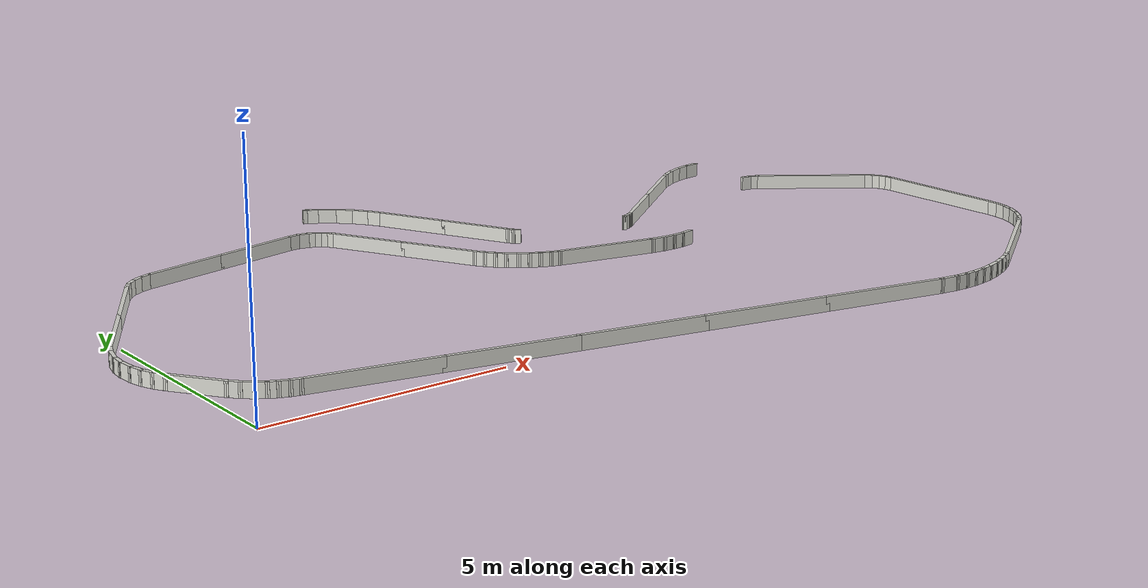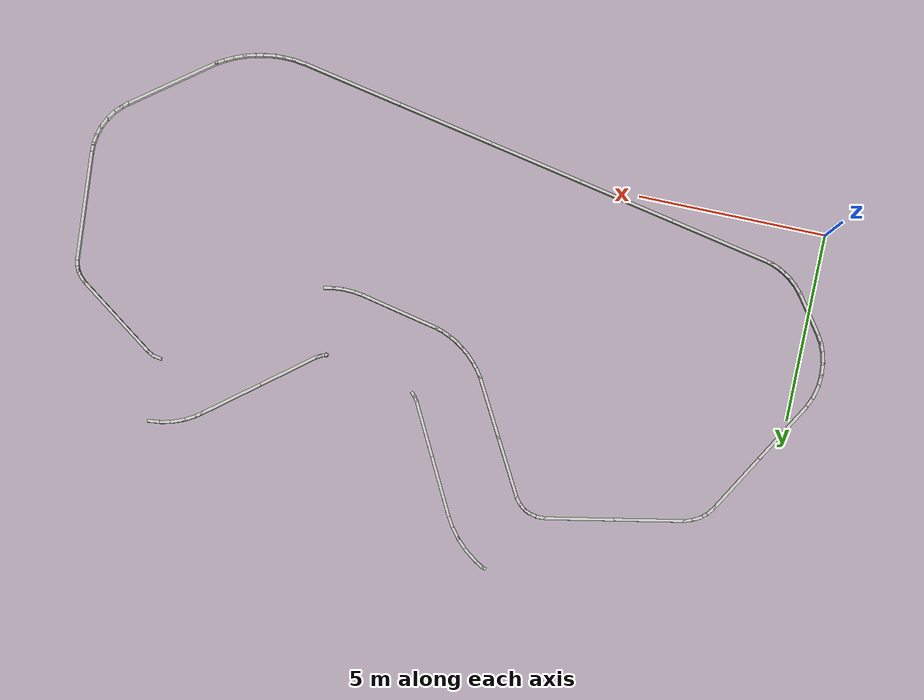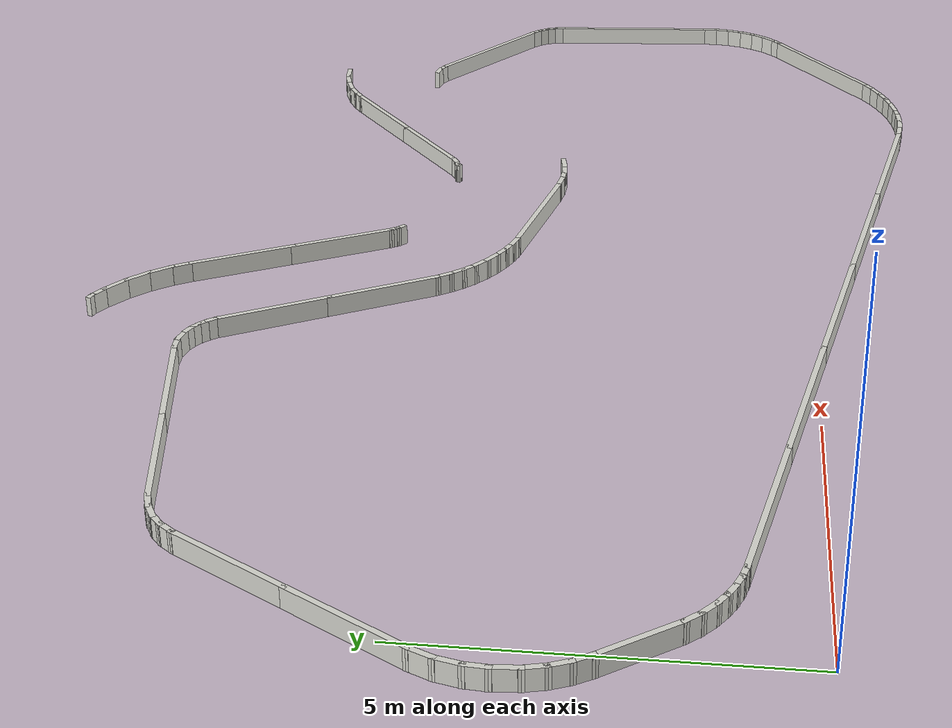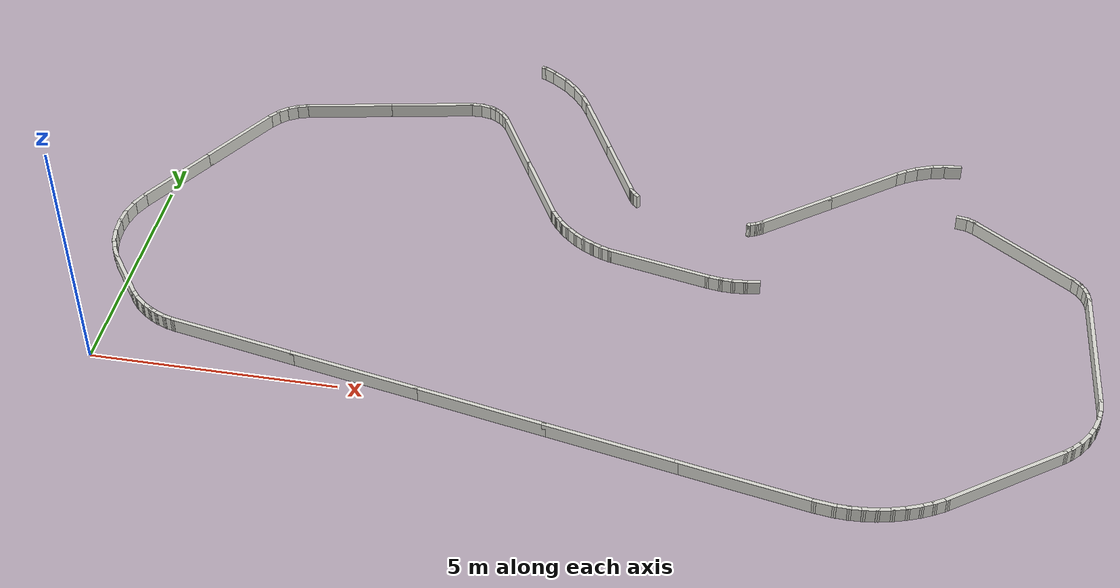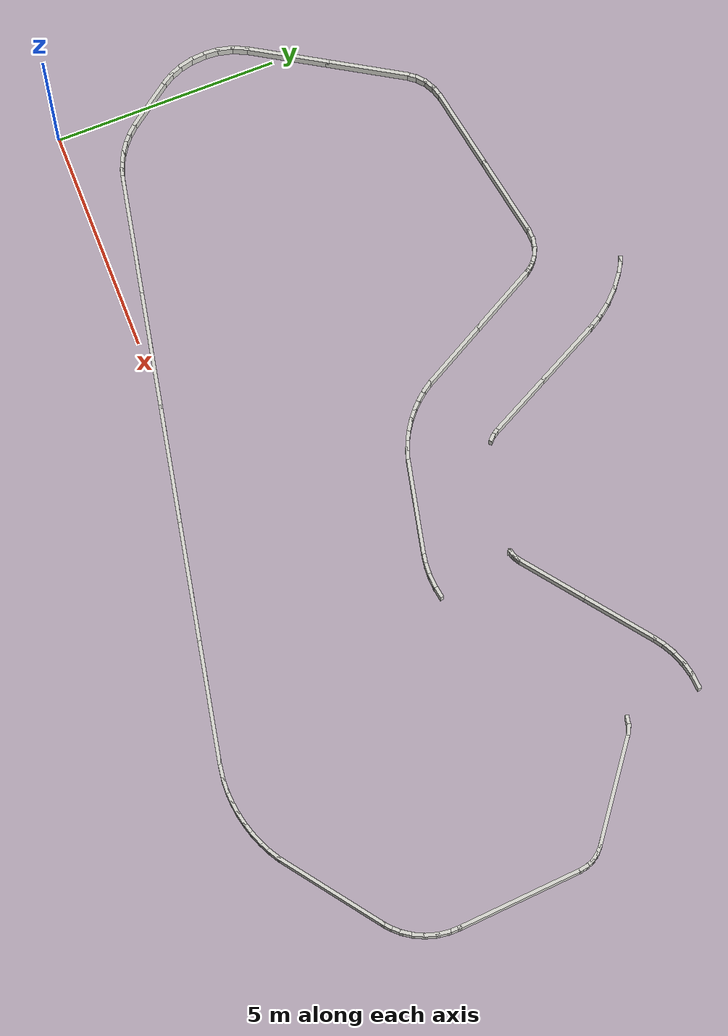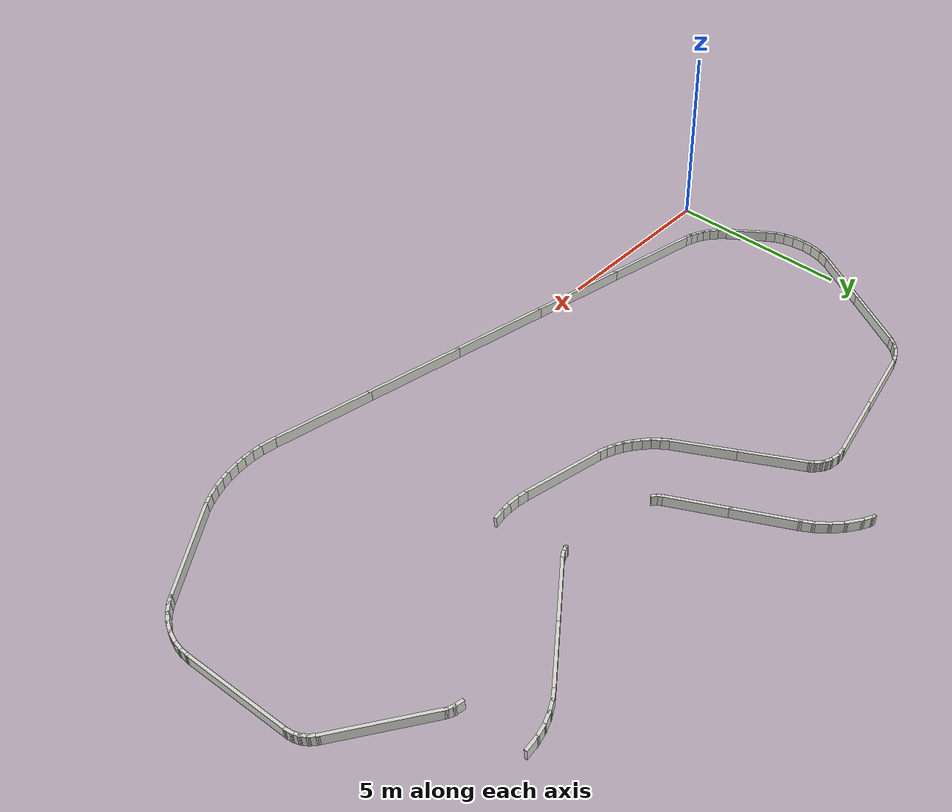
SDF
<sdf version="1.9">
 <world name="default">
  <model name="track_wall">
   <static>true</static>
   <link name="wall_link">
    <collision name="left1_0_0_collision">
     <pose>12.529097 4.063760 0.150000 0.000000 0.000000 -2.968091</pose>
     <geometry><box><size>0.332085 0.080000 0.300000</size></box></geometry>
    </collision>
    <visual name="left1_0_0_visual">
     <pose>12.529097 4.063760 0.150000 0.000000 0.000000 -2.968091</pose>
     <geometry><box><size>0.332085 0.080000 0.300000</size></box></geometry>
     <material><ambient>0.85 0.85 0.82 1</ambient><diffuse>0.85 0.85 0.82 1</diffuse></material>
    </visual>
    <collision name="left1_1_0_collision">
     <pose>12.279195 4.033439 0.150000 0.000000 0.000000 -3.073615</pose>
     <geometry><box><size>0.332085 0.080000 0.300000</size></box></geometry>
    </collision>
    <visual name="left1_1_0_visual">
     <pose>12.279195 4.033439 0.150000 0.000000 0.000000 -3.073615</pose>
     <geometry><box><size>0.332085 0.080000 0.300000</size></box></geometry>
     <material><ambient>0.85 0.85 0.82 1</ambient><diffuse>0.85 0.85 0.82 1</diffuse></material>
    </visual>
    <collision name="left1_2_0_collision">
     <pose>12.027490 4.029609 0.150000 0.000000 0.000000 3.104046</pose>
     <geometry><box><size>0.332085 0.080000 0.300000</size></box></geometry>
    </collision>
    <visual name="left1_2_0_visual">
     <pose>12.027490 4.029609 0.150000 0.000000 0.000000 3.104046</pose>
     <geometry><box><size>0.332085 0.080000 0.300000</size></box></geometry>
     <material><ambient>0.85 0.85 0.82 1</ambient><diffuse>0.85 0.85 0.82 1</diffuse></material>
    </visual>
    <collision name="left1_3_0_collision">
     <pose>11.762774 4.055179 0.150000 0.000000 0.000000 2.992529</pose>
     <geometry><box><size>0.360636 0.080000 0.300000</size></box></geometry>
    </collision>
    <visual name="left1_3_0_visual">
     <pose>11.762774 4.055179 0.150000 0.000000 0.000000 2.992529</pose>
     <geometry><box><size>0.360636 0.080000 0.300000</size></box></geometry>
     <material><ambient>0.85 0.85 0.82 1</ambient><diffuse>0.85 0.85 0.82 1</diffuse></material>
    </visual>
    <collision name="left1_4_0_collision">
     <pose>10.584795 4.299119 0.150000 0.000000 0.000000 2.930121</pose>
     <geometry><box><size>2.205790 0.080000 0.300000</size></box></geometry>
    </collision>
    <visual name="left1_4_0_visual">
     <pose>10.584795 4.299119 0.150000 0.000000 0.000000 2.930121</pose>
     <geometry><box><size>2.205790 0.080000 0.300000</size></box></geometry>
     <material><ambient>0.85 0.85 0.82 1</ambient><diffuse>0.85 0.85 0.82 1</diffuse></material>
    </visual>
    <collision name="left1_5_0_collision">
     <pose>9.455542 4.551528 0.150000 0.000000 0.000000 2.826895</pose>
     <geometry><box><size>0.269372 0.080000 0.300000</size></box></geometry>
    </collision>
    <visual name="left1_5_0_visual">
     <pose>9.455542 4.551528 0.150000 0.000000 0.000000 2.826895</pose>
     <geometry><box><size>0.269372 0.080000 0.300000</size></box></geometry>
     <material><ambient>0.85 0.85 0.82 1</ambient><diffuse>0.85 0.85 0.82 1</diffuse></material>
    </visual>
    <collision name="left1_6_0_collision">
     <pose>9.263793 4.623907 0.150000 0.000000 0.000000 2.741034</pose>
     <geometry><box><size>0.300913 0.080000 0.300000</size></box></geometry>
    </collision>
    <visual name="left1_6_0_visual">
     <pose>9.263793 4.623907 0.150000 0.000000 0.000000 2.741034</pose>
     <geometry><box><size>0.300913 0.080000 0.300000</size></box></geometry>
     <material><ambient>0.85 0.85 0.82 1</ambient><diffuse>0.85 0.85 0.82 1</diffuse></material>
    </visual>
    <collision name="left1_7_0_collision">
     <pose>9.064777 4.719255 0.150000 0.000000 0.000000 2.648569</pose>
     <geometry><box><size>0.300913 0.080000 0.300000</size></box></geometry>
    </collision>
    <visual name="left1_7_0_visual">
     <pose>9.064777 4.719255 0.150000 0.000000 0.000000 2.648569</pose>
     <geometry><box><size>0.300913 0.080000 0.300000</size></box></geometry>
     <material><ambient>0.85 0.85 0.82 1</ambient><diffuse>0.85 0.85 0.82 1</diffuse></material>
    </visual>
    <collision name="left1_8_0_collision">
     <pose>8.875416 4.832573 0.150000 0.000000 0.000000 2.556104</pose>
     <geometry><box><size>0.300913 0.080000 0.300000</size></box></geometry>
    </collision>
    <visual name="left1_8_0_visual">
     <pose>8.875416 4.832573 0.150000 0.000000 0.000000 2.556104</pose>
     <geometry><box><size>0.300913 0.080000 0.300000</size></box></geometry>
     <material><ambient>0.85 0.85 0.82 1</ambient><diffuse>0.85 0.85 0.82 1</diffuse></material>
    </visual>
    <collision name="left1_9_0_collision">
     <pose>8.685095 4.972901 0.150000 0.000000 0.000000 2.462651</pose>
     <geometry><box><size>0.332524 0.080000 0.300000</size></box></geometry>
    </collision>
    <visual name="left1_9_0_visual">
     <pose>8.685095 4.972901 0.150000 0.000000 0.000000 2.462651</pose>
     <geometry><box><size>0.332524 0.080000 0.300000</size></box></geometry>
     <material><ambient>0.85 0.85 0.82 1</ambient><diffuse>0.85 0.85 0.82 1</diffuse></material>
    </visual>
    <collision name="left1_10_0_collision">
     <pose>8.508020 5.129723 0.150000 0.000000 0.000000 2.364383</pose>
     <geometry><box><size>0.301115 0.080000 0.300000</size></box></geometry>
    </collision>
    <visual name="left1_10_0_visual">
     <pose>8.508020 5.129723 0.150000 0.000000 0.000000 2.364383</pose>
     <geometry><box><size>0.301115 0.080000 0.300000</size></box></geometry>
     <material><ambient>0.85 0.85 0.82 1</ambient><diffuse>0.85 0.85 0.82 1</diffuse></material>
    </visual>
    <collision name="left1_11_0_collision">
     <pose>8.357847 5.291785 0.150000 0.000000 0.000000 2.271914</pose>
     <geometry><box><size>0.301246 0.080000 0.300000</size></box></geometry>
    </collision>
    <visual name="left1_11_0_visual">
     <pose>8.357847 5.291785 0.150000 0.000000 0.000000 2.271914</pose>
     <geometry><box><size>0.301246 0.080000 0.300000</size></box></geometry>
     <material><ambient>0.85 0.85 0.82 1</ambient><diffuse>0.85 0.85 0.82 1</diffuse></material>
    </visual>
    <collision name="left1_12_0_collision">
     <pose>8.223199 5.467127 0.150000 0.000000 0.000000 2.179444</pose>
     <geometry><box><size>0.301378 0.080000 0.300000</size></box></geometry>
    </collision>
    <visual name="left1_12_0_visual">
     <pose>8.223199 5.467127 0.150000 0.000000 0.000000 2.179444</pose>
     <geometry><box><size>0.301378 0.080000 0.300000</size></box></geometry>
     <material><ambient>0.85 0.85 0.82 1</ambient><diffuse>0.85 0.85 0.82 1</diffuse></material>
    </visual>
    <collision name="left1_13_0_collision">
     <pose>7.759345 6.286666 0.150000 0.000000 0.000000 2.073394</pose>
     <geometry><box><size>1.743128 0.080000 0.300000</size></box></geometry>
    </collision>
    <visual name="left1_13_0_visual">
     <pose>7.759345 6.286666 0.150000 0.000000 0.000000 2.073394</pose>
     <geometry><box><size>1.743128 0.080000 0.300000</size></box></geometry>
     <material><ambient>0.85 0.85 0.82 1</ambient><diffuse>0.85 0.85 0.82 1</diffuse></material>
    </visual>
    <collision name="left1_13_1_collision">
     <pose>6.958210 7.744122 0.150000 0.000000 0.000000 2.073394</pose>
     <geometry><box><size>1.743128 0.080000 0.300000</size></box></geometry>
    </collision>
    <visual name="left1_13_1_visual">
     <pose>6.958210 7.744122 0.150000 0.000000 0.000000 2.073394</pose>
     <geometry><box><size>1.743128 0.080000 0.300000</size></box></geometry>
     <material><ambient>0.85 0.85 0.82 1</ambient><diffuse>0.85 0.85 0.82 1</diffuse></material>
    </visual>
    <collision name="left1_14_0_collision">
     <pose>6.516052 8.525758 0.150000 0.000000 0.000000 2.236997</pose>
     <geometry><box><size>0.214595 0.080000 0.300000</size></box></geometry>
    </collision>
    <visual name="left1_14_0_visual">
     <pose>6.516052 8.525758 0.150000 0.000000 0.000000 2.236997</pose>
     <geometry><box><size>0.214595 0.080000 0.300000</size></box></geometry>
     <material><ambient>0.85 0.85 0.82 1</ambient><diffuse>0.85 0.85 0.82 1</diffuse></material>
    </visual>
    <collision name="left1_15_0_collision">
     <pose>6.425359 8.624361 0.150000 0.000000 0.000000 2.392130</pose>
     <geometry><box><size>0.214152 0.080000 0.300000</size></box></geometry>
    </collision>
    <visual name="left1_15_0_visual">
     <pose>6.425359 8.624361 0.150000 0.000000 0.000000 2.392130</pose>
     <geometry><box><size>0.214152 0.080000 0.300000</size></box></geometry>
     <material><ambient>0.85 0.85 0.82 1</ambient><diffuse>0.85 0.85 0.82 1</diffuse></material>
    </visual>
    <collision name="left1_16_0_collision">
     <pose>6.320865 8.707491 0.150000 0.000000 0.000000 2.547262</pose>
     <geometry><box><size>0.213709 0.080000 0.300000</size></box></geometry>
    </collision>
    <visual name="left1_16_0_visual">
     <pose>6.320865 8.707491 0.150000 0.000000 0.000000 2.547262</pose>
     <geometry><box><size>0.213709 0.080000 0.300000</size></box></geometry>
     <material><ambient>0.85 0.85 0.82 1</ambient><diffuse>0.85 0.85 0.82 1</diffuse></material>
    </visual>
    <collision name="left1_17_0_collision">
     <pose>6.204985 8.772813 0.150000 0.000000 0.000000 2.709620</pose>
     <geometry><box><size>0.213216 0.080000 0.300000</size></box></geometry>
    </collision>
    <visual name="left1_17_0_visual">
     <pose>6.204985 8.772813 0.150000 0.000000 0.000000 2.709620</pose>
     <geometry><box><size>0.213216 0.080000 0.300000</size></box></geometry>
     <material><ambient>0.85 0.85 0.82 1</ambient><diffuse>0.85 0.85 0.82 1</diffuse></material>
    </visual>
    <collision name="left1_18_0_collision">
     <pose>6.033875 8.824634 0.150000 0.000000 0.000000 2.928508</pose>
     <geometry><box><size>0.306361 0.080000 0.300000</size></box></geometry>
    </collision>
    <visual name="left1_18_0_visual">
     <pose>6.033875 8.824634 0.150000 0.000000 0.000000 2.928508</pose>
     <geometry><box><size>0.306361 0.080000 0.300000</size></box></geometry>
     <material><ambient>0.85 0.85 0.82 1</ambient><diffuse>0.85 0.85 0.82 1</diffuse></material>
    </visual>
    <collision name="left1_19_0_collision">
     <pose>5.811353 8.842621 0.150000 0.000000 0.000000 -3.088486</pose>
     <geometry><box><size>0.304119 0.080000 0.300000</size></box></geometry>
    </collision>
    <visual name="left1_19_0_visual">
     <pose>5.811353 8.842621 0.150000 0.000000 0.000000 -3.088486</pose>
     <geometry><box><size>0.304119 0.080000 0.300000</size></box></geometry>
     <material><ambient>0.85 0.85 0.82 1</ambient><diffuse>0.85 0.85 0.82 1</diffuse></material>
    </visual>
    <collision name="left1_20_0_collision">
     <pose>4.805348 8.666087 0.150000 0.000000 0.000000 -2.953068</pose>
     <geometry><box><size>1.900462 0.080000 0.300000</size></box></geometry>
    </collision>
    <visual name="left1_20_0_visual">
     <pose>4.805348 8.666087 0.150000 0.000000 0.000000 -2.953068</pose>
     <geometry><box><size>1.900462 0.080000 0.300000</size></box></geometry>
     <material><ambient>0.85 0.85 0.82 1</ambient><diffuse>0.85 0.85 0.82 1</diffuse></material>
    </visual>
    <collision name="left1_20_1_collision">
     <pose>3.017142 8.324915 0.150000 0.000000 0.000000 -2.953068</pose>
     <geometry><box><size>1.900462 0.080000 0.300000</size></box></geometry>
    </collision>
    <visual name="left1_20_1_visual">
     <pose>3.017142 8.324915 0.150000 0.000000 0.000000 -2.953068</pose>
     <geometry><box><size>1.900462 0.080000 0.300000</size></box></geometry>
     <material><ambient>0.85 0.85 0.82 1</ambient><diffuse>0.85 0.85 0.82 1</diffuse></material>
    </visual>
    <collision name="left1_21_0_collision">
     <pose>2.012044 8.118467 0.150000 0.000000 0.000000 -2.829084</pose>
     <geometry><box><size>0.313289 0.080000 0.300000</size></box></geometry>
    </collision>
    <visual name="left1_21_0_visual">
     <pose>2.012044 8.118467 0.150000 0.000000 0.000000 -2.829084</pose>
     <geometry><box><size>0.313289 0.080000 0.300000</size></box></geometry>
     <material><ambient>0.85 0.85 0.82 1</ambient><diffuse>0.85 0.85 0.82 1</diffuse></material>
    </visual>
    <collision name="left1_22_0_collision">
     <pose>1.800035 8.025836 0.150000 0.000000 0.000000 -2.629589</pose>
     <geometry><box><size>0.311747 0.080000 0.300000</size></box></geometry>
    </collision>
    <visual name="left1_22_0_visual">
     <pose>1.800035 8.025836 0.150000 0.000000 0.000000 -2.629589</pose>
     <geometry><box><size>0.311747 0.080000 0.300000</size></box></geometry>
     <material><ambient>0.85 0.85 0.82 1</ambient><diffuse>0.85 0.85 0.82 1</diffuse></material>
    </visual>
    <collision name="left1_23_0_collision">
     <pose>1.620993 7.899434 0.150000 0.000000 0.000000 -2.412983</pose>
     <geometry><box><size>0.289161 0.080000 0.300000</size></box></geometry>
    </collision>
    <visual name="left1_23_0_visual">
     <pose>1.620993 7.899434 0.150000 0.000000 0.000000 -2.412983</pose>
     <geometry><box><size>0.289161 0.080000 0.300000</size></box></geometry>
     <material><ambient>0.85 0.85 0.82 1</ambient><diffuse>0.85 0.85 0.82 1</diffuse></material>
    </visual>
    <collision name="left1_24_0_collision">
     <pose>1.476876 7.743662 0.150000 0.000000 0.000000 -2.225243</pose>
     <geometry><box><size>0.297143 0.080000 0.300000</size></box></geometry>
    </collision>
    <visual name="left1_24_0_visual">
     <pose>1.476876 7.743662 0.150000 0.000000 0.000000 -2.225243</pose>
     <geometry><box><size>0.297143 0.080000 0.300000</size></box></geometry>
     <material><ambient>0.85 0.85 0.82 1</ambient><diffuse>0.85 0.85 0.82 1</diffuse></material>
    </visual>
    <collision name="left1_25_0_collision">
     <pose>0.954451 6.886674 0.150000 0.000000 0.000000 -2.105306</pose>
     <geometry><box><size>1.871592 0.080000 0.300000</size></box></geometry>
    </collision>
    <visual name="left1_25_0_visual">
     <pose>0.954451 6.886674 0.150000 0.000000 0.000000 -2.105306</pose>
     <geometry><box><size>1.871592 0.080000 0.300000</size></box></geometry>
     <material><ambient>0.85 0.85 0.82 1</ambient><diffuse>0.85 0.85 0.82 1</diffuse></material>
    </visual>
    <collision name="left1_25_1_collision">
     <pose>0.041779 5.344977 0.150000 0.000000 0.000000 -2.105306</pose>
     <geometry><box><size>1.871592 0.080000 0.300000</size></box></geometry>
    </collision>
    <visual name="left1_25_1_visual">
     <pose>0.041779 5.344977 0.150000 0.000000 0.000000 -2.105306</pose>
     <geometry><box><size>1.871592 0.080000 0.300000</size></box></geometry>
     <material><ambient>0.85 0.85 0.82 1</ambient><diffuse>0.85 0.85 0.82 1</diffuse></material>
    </visual>
    <collision name="left1_26_0_collision">
     <pose>-0.481707 4.425720 0.150000 0.000000 0.000000 -1.995703</pose>
     <geometry><box><size>0.405785 0.080000 0.300000</size></box></geometry>
    </collision>
    <visual name="left1_26_0_visual">
     <pose>-0.481707 4.425720 0.150000 0.000000 0.000000 -1.995703</pose>
     <geometry><box><size>0.405785 0.080000 0.300000</size></box></geometry>
     <material><ambient>0.85 0.85 0.82 1</ambient><diffuse>0.85 0.85 0.82 1</diffuse></material>
    </visual>
    <collision name="left1_27_0_collision">
     <pose>-0.588572 4.115852 0.150000 0.000000 0.000000 -1.811985</pose>
     <geometry><box><size>0.412547 0.080000 0.300000</size></box></geometry>
    </collision>
    <visual name="left1_27_0_visual">
     <pose>-0.588572 4.115852 0.150000 0.000000 0.000000 -1.811985</pose>
     <geometry><box><size>0.412547 0.080000 0.300000</size></box></geometry>
     <material><ambient>0.85 0.85 0.82 1</ambient><diffuse>0.85 0.85 0.82 1</diffuse></material>
    </visual>
    <collision name="left1_28_0_collision">
     <pose>-0.637919 3.813466 0.150000 0.000000 0.000000 -1.639031</pose>
     <geometry><box><size>0.362509 0.080000 0.300000</size></box></geometry>
    </collision>
    <visual name="left1_28_0_visual">
     <pose>-0.637919 3.813466 0.150000 0.000000 0.000000 -1.639031</pose>
     <geometry><box><size>0.362509 0.080000 0.300000</size></box></geometry>
     <material><ambient>0.85 0.85 0.82 1</ambient><diffuse>0.85 0.85 0.82 1</diffuse></material>
    </visual>
    <collision name="left1_29_0_collision">
     <pose>-0.635194 3.503669 0.150000 0.000000 0.000000 -1.497758</pose>
     <geometry><box><size>0.418645 0.080000 0.300000</size></box></geometry>
    </collision>
    <visual name="left1_29_0_visual">
     <pose>-0.635194 3.503669 0.150000 0.000000 0.000000 -1.497758</pose>
     <geometry><box><size>0.418645 0.080000 0.300000</size></box></geometry>
     <material><ambient>0.85 0.85 0.82 1</ambient><diffuse>0.85 0.85 0.82 1</diffuse></material>
    </visual>
    <collision name="left1_30_0_collision">
     <pose>-0.591078 3.198549 0.150000 0.000000 0.000000 -1.341786</pose>
     <geometry><box><size>0.359805 0.080000 0.300000</size></box></geometry>
    </collision>
    <visual name="left1_30_0_visual">
     <pose>-0.591078 3.198549 0.150000 0.000000 0.000000 -1.341786</pose>
     <geometry><box><size>0.359805 0.080000 0.300000</size></box></geometry>
     <material><ambient>0.85 0.85 0.82 1</ambient><diffuse>0.85 0.85 0.82 1</diffuse></material>
    </visual>
    <collision name="left1_31_0_collision">
     <pose>-0.508981 2.938021 0.150000 0.000000 0.000000 -1.185953</pose>
     <geometry><box><size>0.348170 0.080000 0.300000</size></box></geometry>
    </collision>
    <visual name="left1_31_0_visual">
     <pose>-0.508981 2.938021 0.150000 0.000000 0.000000 -1.185953</pose>
     <geometry><box><size>0.348170 0.080000 0.300000</size></box></geometry>
     <material><ambient>0.85 0.85 0.82 1</ambient><diffuse>0.85 0.85 0.82 1</diffuse></material>
    </visual>
    <collision name="left1_32_0_collision">
     <pose>-0.393354 2.703339 0.150000 0.000000 0.000000 -1.036752</pose>
     <geometry><box><size>0.336531 0.080000 0.300000</size></box></geometry>
    </collision>
    <visual name="left1_32_0_visual">
     <pose>-0.393354 2.703339 0.150000 0.000000 0.000000 -1.036752</pose>
     <geometry><box><size>0.336531 0.080000 0.300000</size></box></geometry>
     <material><ambient>0.85 0.85 0.82 1</ambient><diffuse>0.85 0.85 0.82 1</diffuse></material>
    </visual>
    <collision name="left1_33_0_collision">
     <pose>0.007031 2.124504 0.150000 0.000000 0.000000 -0.949836</pose>
     <geometry><box><size>1.231894 0.080000 0.300000</size></box></geometry>
    </collision>
    <visual name="left1_33_0_visual">
     <pose>0.007031 2.124504 0.150000 0.000000 0.000000 -0.949836</pose>
     <geometry><box><size>1.231894 0.080000 0.300000</size></box></geometry>
     <material><ambient>0.85 0.85 0.82 1</ambient><diffuse>0.85 0.85 0.82 1</diffuse></material>
    </visual>
    <collision name="left1_34_0_collision">
     <pose>0.423454 1.563980 0.150000 0.000000 0.000000 -0.847411</pose>
     <geometry><box><size>0.325728 0.080000 0.300000</size></box></geometry>
    </collision>
    <visual name="left1_34_0_visual">
     <pose>0.423454 1.563980 0.150000 0.000000 0.000000 -0.847411</pose>
     <geometry><box><size>0.325728 0.080000 0.300000</size></box></geometry>
     <material><ambient>0.85 0.85 0.82 1</ambient><diffuse>0.85 0.85 0.82 1</diffuse></material>
    </visual>
    <collision name="left1_35_0_collision">
     <pose>0.598142 1.392014 0.150000 0.000000 0.000000 -0.707679</pose>
     <geometry><box><size>0.325728 0.080000 0.300000</size></box></geometry>
    </collision>
    <visual name="left1_35_0_visual">
     <pose>0.598142 1.392014 0.150000 0.000000 0.000000 -0.707679</pose>
     <geometry><box><size>0.325728 0.080000 0.300000</size></box></geometry>
     <material><ambient>0.85 0.85 0.82 1</ambient><diffuse>0.85 0.85 0.82 1</diffuse></material>
    </visual>
    <collision name="left1_36_0_collision">
     <pose>0.779271 1.253793 0.150000 0.000000 0.000000 -0.586728</pose>
     <geometry><box><size>0.290789 0.080000 0.300000</size></box></geometry>
    </collision>
    <visual name="left1_36_0_visual">
     <pose>0.779271 1.253793 0.150000 0.000000 0.000000 -0.586728</pose>
     <geometry><box><size>0.290789 0.080000 0.300000</size></box></geometry>
     <material><ambient>0.85 0.85 0.82 1</ambient><diffuse>0.85 0.85 0.82 1</diffuse></material>
    </visual>
    <collision name="left1_37_0_collision">
     <pose>0.950041 1.151605 0.150000 0.000000 0.000000 -0.485911</pose>
     <geometry><box><size>0.267736 0.080000 0.300000</size></box></geometry>
    </collision>
    <visual name="left1_37_0_visual">
     <pose>0.950041 1.151605 0.150000 0.000000 0.000000 -0.485911</pose>
     <geometry><box><size>0.267736 0.080000 0.300000</size></box></geometry>
     <material><ambient>0.85 0.85 0.82 1</ambient><diffuse>0.85 0.85 0.82 1</diffuse></material>
    </visual>
    <collision name="left1_38_0_collision">
     <pose>1.126018 1.071055 0.150000 0.000000 0.000000 -0.376070</pose>
     <geometry><box><size>0.279920 0.080000 0.300000</size></box></geometry>
    </collision>
    <visual name="left1_38_0_visual">
     <pose>1.126018 1.071055 0.150000 0.000000 0.000000 -0.376070</pose>
     <geometry><box><size>0.279920 0.080000 0.300000</size></box></geometry>
     <material><ambient>0.85 0.85 0.82 1</ambient><diffuse>0.85 0.85 0.82 1</diffuse></material>
    </visual>
    <collision name="left1_39_0_collision">
     <pose>1.309973 1.009532 0.150000 0.000000 0.000000 -0.266234</pose>
     <geometry><box><size>0.268606 0.080000 0.300000</size></box></geometry>
    </collision>
    <visual name="left1_39_0_visual">
     <pose>1.309973 1.009532 0.150000 0.000000 0.000000 -0.266234</pose>
     <geometry><box><size>0.268606 0.080000 0.300000</size></box></geometry>
     <material><ambient>0.85 0.85 0.82 1</ambient><diffuse>0.85 0.85 0.82 1</diffuse></material>
    </visual>
    <collision name="left1_40_0_collision">
     <pose>2.695962 0.725203 0.150000 0.000000 0.000000 -0.197779</pose>
     <geometry><box><size>2.721510 0.080000 0.300000</size></box></geometry>
    </collision>
    <visual name="left1_40_0_visual">
     <pose>2.695962 0.725203 0.150000 0.000000 0.000000 -0.197779</pose>
     <geometry><box><size>2.721510 0.080000 0.300000</size></box></geometry>
     <material><ambient>0.85 0.85 0.82 1</ambient><diffuse>0.85 0.85 0.82 1</diffuse></material>
    </visual>
    <collision name="left1_40_1_collision">
     <pose>5.285977 0.206168 0.150000 0.000000 0.000000 -0.197779</pose>
     <geometry><box><size>2.721510 0.080000 0.300000</size></box></geometry>
    </collision>
    <visual name="left1_40_1_visual">
     <pose>5.285977 0.206168 0.150000 0.000000 0.000000 -0.197779</pose>
     <geometry><box><size>2.721510 0.080000 0.300000</size></box></geometry>
     <material><ambient>0.85 0.85 0.82 1</ambient><diffuse>0.85 0.85 0.82 1</diffuse></material>
    </visual>
    <collision name="left1_40_2_collision">
     <pose>7.875992 -0.312866 0.150000 0.000000 0.000000 -0.197779</pose>
     <geometry><box><size>2.721510 0.080000 0.300000</size></box></geometry>
    </collision>
    <visual name="left1_40_2_visual">
     <pose>7.875992 -0.312866 0.150000 0.000000 0.000000 -0.197779</pose>
     <geometry><box><size>2.721510 0.080000 0.300000</size></box></geometry>
     <material><ambient>0.85 0.85 0.82 1</ambient><diffuse>0.85 0.85 0.82 1</diffuse></material>
    </visual>
    <collision name="left1_40_3_collision">
     <pose>10.466008 -0.831901 0.150000 0.000000 0.000000 -0.197779</pose>
     <geometry><box><size>2.721510 0.080000 0.300000</size></box></geometry>
    </collision>
    <visual name="left1_40_3_visual">
     <pose>10.466008 -0.831901 0.150000 0.000000 0.000000 -0.197779</pose>
     <geometry><box><size>2.721510 0.080000 0.300000</size></box></geometry>
     <material><ambient>0.85 0.85 0.82 1</ambient><diffuse>0.85 0.85 0.82 1</diffuse></material>
    </visual>
    <collision name="left1_40_4_collision">
     <pose>13.056023 -1.350936 0.150000 0.000000 0.000000 -0.197779</pose>
     <geometry><box><size>2.721510 0.080000 0.300000</size></box></geometry>
    </collision>
    <visual name="left1_40_4_visual">
     <pose>13.056023 -1.350936 0.150000 0.000000 0.000000 -0.197779</pose>
     <geometry><box><size>2.721510 0.080000 0.300000</size></box></geometry>
     <material><ambient>0.85 0.85 0.82 1</ambient><diffuse>0.85 0.85 0.82 1</diffuse></material>
    </visual>
    <collision name="left1_41_0_collision">
     <pose>14.535889 -1.636078 0.150000 0.000000 0.000000 -0.137738</pose>
     <geometry><box><size>0.453251 0.080000 0.300000</size></box></geometry>
    </collision>
    <visual name="left1_41_0_visual">
     <pose>14.535889 -1.636078 0.150000 0.000000 0.000000 -0.137738</pose>
     <geometry><box><size>0.453251 0.080000 0.300000</size></box></geometry>
     <material><ambient>0.85 0.85 0.82 1</ambient><diffuse>0.85 0.85 0.82 1</diffuse></material>
    </visual>
    <collision name="left1_42_0_collision">
     <pose>14.855298 -1.666479 0.150000 0.000000 0.000000 -0.035487</pose>
     <geometry><box><size>0.349273 0.080000 0.300000</size></box></geometry>
    </collision>
    <visual name="left1_42_0_visual">
     <pose>14.855298 -1.666479 0.150000 0.000000 0.000000 -0.035487</pose>
     <geometry><box><size>0.349273 0.080000 0.300000</size></box></geometry>
     <material><ambient>0.85 0.85 0.82 1</ambient><diffuse>0.85 0.85 0.82 1</diffuse></material>
    </visual>
    <collision name="left1_43_0_collision">
     <pose>15.117041 -1.665178 0.150000 0.000000 0.000000 0.047747</pose>
     <geometry><box><size>0.334673 0.080000 0.300000</size></box></geometry>
    </collision>
    <visual name="left1_43_0_visual">
     <pose>15.117041 -1.665178 0.150000 0.000000 0.000000 0.047747</pose>
     <geometry><box><size>0.334673 0.080000 0.300000</size></box></geometry>
     <material><ambient>0.85 0.85 0.82 1</ambient><diffuse>0.85 0.85 0.82 1</diffuse></material>
    </visual>
    <collision name="left1_44_0_collision">
     <pose>15.370686 -1.642748 0.150000 0.000000 0.000000 0.128605</pose>
     <geometry><box><size>0.335013 0.080000 0.300000</size></box></geometry>
    </collision>
    <visual name="left1_44_0_visual">
     <pose>15.370686 -1.642748 0.150000 0.000000 0.000000 0.128605</pose>
     <geometry><box><size>0.335013 0.080000 0.300000</size></box></geometry>
     <material><ambient>0.85 0.85 0.82 1</ambient><diffuse>0.85 0.85 0.82 1</diffuse></material>
    </visual>
    <collision name="left1_45_0_collision">
     <pose>15.629417 -1.598367 0.150000 0.000000 0.000000 0.208802</pose>
     <geometry><box><size>0.350427 0.080000 0.300000</size></box></geometry>
    </collision>
    <visual name="left1_45_0_visual">
     <pose>15.629417 -1.598367 0.150000 0.000000 0.000000 0.208802</pose>
     <geometry><box><size>0.350427 0.080000 0.300000</size></box></geometry>
     <material><ambient>0.85 0.85 0.82 1</ambient><diffuse>0.85 0.85 0.82 1</diffuse></material>
    </visual>
    <collision name="left1_46_0_collision">
     <pose>15.891530 -1.531641 0.150000 0.000000 0.000000 0.289661</pose>
     <geometry><box><size>0.350963 0.080000 0.300000</size></box></geometry>
    </collision>
    <visual name="left1_46_0_visual">
     <pose>15.891530 -1.531641 0.150000 0.000000 0.000000 0.289661</pose>
     <geometry><box><size>0.350963 0.080000 0.300000</size></box></geometry>
     <material><ambient>0.85 0.85 0.82 1</ambient><diffuse>0.85 0.85 0.82 1</diffuse></material>
    </visual>
    <collision name="left1_47_0_collision">
     <pose>16.140772 -1.446230 0.150000 0.000000 0.000000 0.372921</pose>
     <geometry><box><size>0.336434 0.080000 0.300000</size></box></geometry>
    </collision>
    <visual name="left1_47_0_visual">
     <pose>16.140772 -1.446230 0.150000 0.000000 0.000000 0.372921</pose>
     <geometry><box><size>0.336434 0.080000 0.300000</size></box></geometry>
     <material><ambient>0.85 0.85 0.82 1</ambient><diffuse>0.85 0.85 0.82 1</diffuse></material>
    </visual>
    <collision name="left1_48_0_collision">
     <pose>16.375642 -1.343197 0.150000 0.000000 0.000000 0.453803</pose>
     <geometry><box><size>0.336937 0.080000 0.300000</size></box></geometry>
    </collision>
    <visual name="left1_48_0_visual">
     <pose>16.375642 -1.343197 0.150000 0.000000 0.000000 0.453803</pose>
     <geometry><box><size>0.336937 0.080000 0.300000</size></box></geometry>
     <material><ambient>0.85 0.85 0.82 1</ambient><diffuse>0.85 0.85 0.82 1</diffuse></material>
    </visual>
    <collision name="left1_49_0_collision">
     <pose>16.601861 -1.221287 0.150000 0.000000 0.000000 0.534685</pose>
     <geometry><box><size>0.337439 0.080000 0.300000</size></box></geometry>
    </collision>
    <visual name="left1_49_0_visual">
     <pose>16.601861 -1.221287 0.150000 0.000000 0.000000 0.534685</pose>
     <geometry><box><size>0.337439 0.080000 0.300000</size></box></geometry>
     <material><ambient>0.85 0.85 0.82 1</ambient><diffuse>0.85 0.85 0.82 1</diffuse></material>
    </visual>
    <collision name="left1_50_0_collision">
     <pose>17.753539 -0.380810 0.150000 0.000000 0.000000 0.639921</pose>
     <geometry><box><size>2.675358 0.080000 0.300000</size></box></geometry>
    </collision>
    <visual name="left1_50_0_visual">
     <pose>17.753539 -0.380810 0.150000 0.000000 0.000000 0.639921</pose>
     <geometry><box><size>2.675358 0.080000 0.300000</size></box></geometry>
     <material><ambient>0.85 0.85 0.82 1</ambient><diffuse>0.85 0.85 0.82 1</diffuse></material>
    </visual>
    <collision name="left1_51_0_collision">
     <pose>18.861525 0.450660 0.150000 0.000000 0.000000 0.700867</pose>
     <geometry><box><size>0.255488 0.080000 0.300000</size></box></geometry>
    </collision>
    <visual name="left1_51_0_visual">
     <pose>18.861525 0.450660 0.150000 0.000000 0.000000 0.700867</pose>
     <geometry><box><size>0.255488 0.080000 0.300000</size></box></geometry>
     <material><ambient>0.85 0.85 0.82 1</ambient><diffuse>0.85 0.85 0.82 1</diffuse></material>
    </visual>
    <collision name="left1_52_0_collision">
     <pose>19.013364 0.600131 0.150000 0.000000 0.000000 0.831006</pose>
     <geometry><box><size>0.331518 0.080000 0.300000</size></box></geometry>
    </collision>
    <visual name="left1_52_0_visual">
     <pose>19.013364 0.600131 0.150000 0.000000 0.000000 0.831006</pose>
     <geometry><box><size>0.331518 0.080000 0.300000</size></box></geometry>
     <material><ambient>0.85 0.85 0.82 1</ambient><diffuse>0.85 0.85 0.82 1</diffuse></material>
    </visual>
    <collision name="left1_53_0_collision">
     <pose>19.168075 0.798208 0.150000 0.000000 0.000000 0.984076</pose>
     <geometry><box><size>0.332629 0.080000 0.300000</size></box></geometry>
    </collision>
    <visual name="left1_53_0_visual">
     <pose>19.168075 0.798208 0.150000 0.000000 0.000000 0.984076</pose>
     <geometry><box><size>0.332629 0.080000 0.300000</size></box></geometry>
     <material><ambient>0.85 0.85 0.82 1</ambient><diffuse>0.85 0.85 0.82 1</diffuse></material>
    </visual>
    <collision name="left1_54_0_collision">
     <pose>19.291532 1.018452 0.150000 0.000000 0.000000 1.135356</pose>
     <geometry><box><size>0.333790 0.080000 0.300000</size></box></geometry>
    </collision>
    <visual name="left1_54_0_visual">
     <pose>19.291532 1.018452 0.150000 0.000000 0.000000 1.135356</pose>
     <geometry><box><size>0.333790 0.080000 0.300000</size></box></geometry>
     <material><ambient>0.85 0.85 0.82 1</ambient><diffuse>0.85 0.85 0.82 1</diffuse></material>
    </visual>
    <collision name="left1_55_0_collision">
     <pose>19.380802 1.255903 0.150000 0.000000 0.000000 1.286660</pose>
     <geometry><box><size>0.335020 0.080000 0.300000</size></box></geometry>
    </collision>
    <visual name="left1_55_0_visual">
     <pose>19.380802 1.255903 0.150000 0.000000 0.000000 1.286660</pose>
     <geometry><box><size>0.335020 0.080000 0.300000</size></box></geometry>
     <material><ambient>0.85 0.85 0.82 1</ambient><diffuse>0.85 0.85 0.82 1</diffuse></material>
    </visual>
    <collision name="left1_56_0_collision">
     <pose>19.432914 1.498920 0.150000 0.000000 0.000000 1.435926</pose>
     <geometry><box><size>0.323451 0.080000 0.300000</size></box></geometry>
    </collision>
    <visual name="left1_56_0_visual">
     <pose>19.432914 1.498920 0.150000 0.000000 0.000000 1.435926</pose>
     <geometry><box><size>0.323451 0.080000 0.300000</size></box></geometry>
     <material><ambient>0.85 0.85 0.82 1</ambient><diffuse>0.85 0.85 0.82 1</diffuse></material>
    </visual>
    <collision name="left1_57_0_collision">
     <pose>19.448174 1.738915 0.150000 0.000000 0.000000 1.580074</pose>
     <geometry><box><size>0.318760 0.080000 0.300000</size></box></geometry>
    </collision>
    <visual name="left1_57_0_visual">
     <pose>19.448174 1.738915 0.150000 0.000000 0.000000 1.580074</pose>
     <geometry><box><size>0.318760 0.080000 0.300000</size></box></geometry>
     <material><ambient>0.85 0.85 0.82 1</ambient><diffuse>0.85 0.85 0.82 1</diffuse></material>
    </visual>
    <collision name="left1_58_0_collision">
     <pose>19.334919 3.273047 0.150000 0.000000 0.000000 1.649901</pose>
     <geometry><box><size>2.918391 0.080000 0.300000</size></box></geometry>
    </collision>
    <visual name="left1_58_0_visual">
     <pose>19.334919 3.273047 0.150000 0.000000 0.000000 1.649901</pose>
     <geometry><box><size>2.918391 0.080000 0.300000</size></box></geometry>
     <material><ambient>0.85 0.85 0.82 1</ambient><diffuse>0.85 0.85 0.82 1</diffuse></material>
    </visual>
    <collision name="left1_59_0_collision">
     <pose>19.207153 4.765461 0.150000 0.000000 0.000000 1.769273</pose>
     <geometry><box><size>0.238423 0.080000 0.300000</size></box></geometry>
    </collision>
    <visual name="left1_59_0_visual">
     <pose>19.207153 4.765461 0.150000 0.000000 0.000000 1.769273</pose>
     <geometry><box><size>0.238423 0.080000 0.300000</size></box></geometry>
     <material><ambient>0.85 0.85 0.82 1</ambient><diffuse>0.85 0.85 0.82 1</diffuse></material>
    </visual>
    <collision name="left1_60_0_collision">
     <pose>19.161536 4.917086 0.150000 0.000000 0.000000 1.956080</pose>
     <geometry><box><size>0.239639 0.080000 0.300000</size></box></geometry>
    </collision>
    <visual name="left1_60_0_visual">
     <pose>19.161536 4.917086 0.150000 0.000000 0.000000 1.956080</pose>
     <geometry><box><size>0.239639 0.080000 0.300000</size></box></geometry>
     <material><ambient>0.85 0.85 0.82 1</ambient><diffuse>0.85 0.85 0.82 1</diffuse></material>
    </visual>
    <collision name="left1_61_0_collision">
     <pose>19.082315 5.060418 0.150000 0.000000 0.000000 2.187955</pose>
     <geometry><box><size>0.250110 0.080000 0.300000</size></box></geometry>
    </collision>
    <visual name="left1_61_0_visual">
     <pose>19.082315 5.060418 0.150000 0.000000 0.000000 2.187955</pose>
     <geometry><box><size>0.250110 0.080000 0.300000</size></box></geometry>
     <material><ambient>0.85 0.85 0.82 1</ambient><diffuse>0.85 0.85 0.82 1</diffuse></material>
    </visual>
    <collision name="left1_62_0_collision">
     <pose>18.967108 5.191064 0.150000 0.000000 0.000000 2.393129</pose>
     <geometry><box><size>0.260102 0.080000 0.300000</size></box></geometry>
    </collision>
    <visual name="left1_62_0_visual">
     <pose>18.967108 5.191064 0.150000 0.000000 0.000000 2.393129</pose>
     <geometry><box><size>0.260102 0.080000 0.300000</size></box></geometry>
     <material><ambient>0.85 0.85 0.82 1</ambient><diffuse>0.85 0.85 0.82 1</diffuse></material>
    </visual>
    <collision name="left1_63_0_collision">
     <pose>17.883959 5.979000 0.150000 0.000000 0.000000 2.521272</pose>
     <geometry><box><size>2.580124 0.080000 0.300000</size></box></geometry>
    </collision>
    <visual name="left1_63_0_visual">
     <pose>17.883959 5.979000 0.150000 0.000000 0.000000 2.521272</pose>
     <geometry><box><size>2.580124 0.080000 0.300000</size></box></geometry>
     <material><ambient>0.85 0.85 0.82 1</ambient><diffuse>0.85 0.85 0.82 1</diffuse></material>
    </visual>
    <collision name="left1_64_0_collision">
     <pose>16.791968 6.742411 0.150000 0.000000 0.000000 2.684996</pose>
     <geometry><box><size>0.246731 0.080000 0.300000</size></box></geometry>
    </collision>
    <visual name="left1_64_0_visual">
     <pose>16.791968 6.742411 0.150000 0.000000 0.000000 2.684996</pose>
     <geometry><box><size>0.246731 0.080000 0.300000</size></box></geometry>
     <material><ambient>0.85 0.85 0.82 1</ambient><diffuse>0.85 0.85 0.82 1</diffuse></material>
    </visual>
    <collision name="left1_65_0_collision">
     <pose>16.622691 6.797054 0.150000 0.000000 0.000000 2.954425</pose>
     <geometry><box><size>0.272262 0.080000 0.300000</size></box></geometry>
    </collision>
    <visual name="left1_65_0_visual">
     <pose>16.622691 6.797054 0.150000 0.000000 0.000000 2.954425</pose>
     <geometry><box><size>0.272262 0.080000 0.300000</size></box></geometry>
     <material><ambient>0.85 0.85 0.82 1</ambient><diffuse>0.85 0.85 0.82 1</diffuse></material>
    </visual>
    <collision name="right0_0_0_collision">
     <pose>16.312312 8.468381 0.150000 0.000000 0.000000 -3.042411</pose>
     <geometry><box><size>0.398663 0.080000 0.300000</size></box></geometry>
    </collision>
    <visual name="right0_0_0_visual">
     <pose>16.312312 8.468381 0.150000 0.000000 0.000000 -3.042411</pose>
     <geometry><box><size>0.398663 0.080000 0.300000</size></box></geometry>
     <material><ambient>0.85 0.85 0.82 1</ambient><diffuse>0.85 0.85 0.82 1</diffuse></material>
    </visual>
    <collision name="right0_1_0_collision">
     <pose>16.014145 8.419268 0.150000 0.000000 0.000000 -2.907217</pose>
     <geometry><box><size>0.367088 0.080000 0.300000</size></box></geometry>
    </collision>
    <visual name="right0_1_0_visual">
     <pose>16.014145 8.419268 0.150000 0.000000 0.000000 -2.907217</pose>
     <geometry><box><size>0.367088 0.080000 0.300000</size></box></geometry>
     <material><ambient>0.85 0.85 0.82 1</ambient><diffuse>0.85 0.85 0.82 1</diffuse></material>
    </visual>
    <collision name="right0_2_0_collision">
     <pose>15.725697 8.328280 0.150000 0.000000 0.000000 -2.772018</pose>
     <geometry><box><size>0.399209 0.080000 0.300000</size></box></geometry>
    </collision>
    <visual name="right0_2_0_visual">
     <pose>15.725697 8.328280 0.150000 0.000000 0.000000 -2.772018</pose>
     <geometry><box><size>0.399209 0.080000 0.300000</size></box></geometry>
     <material><ambient>0.85 0.85 0.82 1</ambient><diffuse>0.85 0.85 0.82 1</diffuse></material>
    </visual>
    <collision name="right0_3_0_collision">
     <pose>15.451011 8.201090 0.150000 0.000000 0.000000 -2.636823</pose>
     <geometry><box><size>0.367580 0.080000 0.300000</size></box></geometry>
    </collision>
    <visual name="right0_3_0_visual">
     <pose>15.451011 8.201090 0.150000 0.000000 0.000000 -2.636823</pose>
     <geometry><box><size>0.367580 0.080000 0.300000</size></box></geometry>
     <material><ambient>0.85 0.85 0.82 1</ambient><diffuse>0.85 0.85 0.82 1</diffuse></material>
    </visual>
    <collision name="right0_4_0_collision">
     <pose>15.235132 8.067574 0.150000 0.000000 0.000000 -2.523719</pose>
     <geometry><box><size>0.300882 0.080000 0.300000</size></box></geometry>
    </collision>
    <visual name="right0_4_0_visual">
     <pose>15.235132 8.067574 0.150000 0.000000 0.000000 -2.523719</pose>
     <geometry><box><size>0.300882 0.080000 0.300000</size></box></geometry>
     <material><ambient>0.85 0.85 0.82 1</ambient><diffuse>0.85 0.85 0.82 1</diffuse></material>
    </visual>
    <collision name="right0_5_0_collision">
     <pose>14.482793 7.484730 0.150000 0.000000 0.000000 -2.477050</pose>
     <geometry><box><size>1.762719 0.080000 0.300000</size></box></geometry>
    </collision>
    <visual name="right0_5_0_visual">
     <pose>14.482793 7.484730 0.150000 0.000000 0.000000 -2.477050</pose>
     <geometry><box><size>1.762719 0.080000 0.300000</size></box></geometry>
     <material><ambient>0.85 0.85 0.82 1</ambient><diffuse>0.85 0.85 0.82 1</diffuse></material>
    </visual>
    <collision name="right0_5_1_collision">
     <pose>13.158157 6.446999 0.150000 0.000000 0.000000 -2.477050</pose>
     <geometry><box><size>1.762719 0.080000 0.300000</size></box></geometry>
    </collision>
    <visual name="right0_5_1_visual">
     <pose>13.158157 6.446999 0.150000 0.000000 0.000000 -2.477050</pose>
     <geometry><box><size>1.762719 0.080000 0.300000</size></box></geometry>
     <material><ambient>0.85 0.85 0.82 1</ambient><diffuse>0.85 0.85 0.82 1</diffuse></material>
    </visual>
    <collision name="right0_6_0_collision">
     <pose>12.447312 5.898744 0.150000 0.000000 0.000000 -2.597065</pose>
     <geometry><box><size>0.193466 0.080000 0.300000</size></box></geometry>
    </collision>
    <visual name="right0_6_0_visual">
     <pose>12.447312 5.898744 0.150000 0.000000 0.000000 -2.597065</pose>
     <geometry><box><size>0.193466 0.080000 0.300000</size></box></geometry>
     <material><ambient>0.85 0.85 0.82 1</ambient><diffuse>0.85 0.85 0.82 1</diffuse></material>
    </visual>
    <collision name="right0_7_0_collision">
     <pose>12.330281 5.845632 0.150000 0.000000 0.000000 -2.808196</pose>
     <geometry><box><size>0.224989 0.080000 0.300000</size></box></geometry>
    </collision>
    <visual name="right0_7_0_visual">
     <pose>12.330281 5.845632 0.150000 0.000000 0.000000 -2.808196</pose>
     <geometry><box><size>0.224989 0.080000 0.300000</size></box></geometry>
     <material><ambient>0.85 0.85 0.82 1</ambient><diffuse>0.85 0.85 0.82 1</diffuse></material>
    </visual>
    <collision name="right0_8_0_collision">
     <pose>12.258974 5.816156 0.150000 0.000000 0.000000 -2.024492</pose>
     <geometry><box><size>0.092799 0.080000 0.300000</size></box></geometry>
    </collision>
    <visual name="right0_8_0_visual">
     <pose>12.258974 5.816156 0.150000 0.000000 0.000000 -2.024492</pose>
     <geometry><box><size>0.092799 0.080000 0.300000</size></box></geometry>
     <material><ambient>0.85 0.85 0.82 1</ambient><diffuse>0.85 0.85 0.82 1</diffuse></material>
    </visual>
    <collision name="right2_0_0_collision">
     <pose>9.781642 6.379291 0.150000 0.000000 0.000000 2.365806</pose>
     <geometry><box><size>0.192383 0.080000 0.300000</size></box></geometry>
    </collision>
    <visual name="right2_0_0_visual">
     <pose>9.781642 6.379291 0.150000 0.000000 0.000000 2.365806</pose>
     <geometry><box><size>0.192383 0.080000 0.300000</size></box></geometry>
     <material><ambient>0.85 0.85 0.82 1</ambient><diffuse>0.85 0.85 0.82 1</diffuse></material>
    </visual>
    <collision name="right2_1_0_collision">
     <pose>9.707539 6.467965 0.150000 0.000000 0.000000 2.174159</pose>
     <geometry><box><size>0.199803 0.080000 0.300000</size></box></geometry>
    </collision>
    <visual name="right2_1_0_visual">
     <pose>9.707539 6.467965 0.150000 0.000000 0.000000 2.174159</pose>
     <geometry><box><size>0.199803 0.080000 0.300000</size></box></geometry>
     <material><ambient>0.85 0.85 0.82 1</ambient><diffuse>0.85 0.85 0.82 1</diffuse></material>
    </visual>
    <collision name="right2_2_0_collision">
     <pose>9.312705 7.210818 0.150000 0.000000 0.000000 2.050555</pose>
     <geometry><box><size>1.643574 0.080000 0.300000</size></box></geometry>
    </collision>
    <visual name="right2_2_0_visual">
     <pose>9.312705 7.210818 0.150000 0.000000 0.000000 2.050555</pose>
     <geometry><box><size>1.643574 0.080000 0.300000</size></box></geometry>
     <material><ambient>0.85 0.85 0.82 1</ambient><diffuse>0.85 0.85 0.82 1</diffuse></material>
    </visual>
    <collision name="right2_2_1_collision">
     <pose>8.591014 8.597875 0.150000 0.000000 0.000000 2.050555</pose>
     <geometry><box><size>1.643574 0.080000 0.300000</size></box></geometry>
    </collision>
    <visual name="right2_2_1_visual">
     <pose>8.591014 8.597875 0.150000 0.000000 0.000000 2.050555</pose>
     <geometry><box><size>1.643574 0.080000 0.300000</size></box></geometry>
     <material><ambient>0.85 0.85 0.82 1</ambient><diffuse>0.85 0.85 0.82 1</diffuse></material>
    </visual>
    <collision name="right2_3_0_collision">
     <pose>8.153282 9.419963 0.150000 0.000000 0.000000 2.109790</pose>
     <geometry><box><size>0.379594 0.080000 0.300000</size></box></geometry>
    </collision>
    <visual name="right2_3_0_visual">
     <pose>8.153282 9.419963 0.150000 0.000000 0.000000 2.109790</pose>
     <geometry><box><size>0.379594 0.080000 0.300000</size></box></geometry>
     <material><ambient>0.85 0.85 0.82 1</ambient><diffuse>0.85 0.85 0.82 1</diffuse></material>
    </visual>
    <collision name="right2_4_0_collision">
     <pose>7.965109 9.691786 0.150000 0.000000 0.000000 2.231228</pose>
     <geometry><box><size>0.442816 0.080000 0.300000</size></box></geometry>
    </collision>
    <visual name="right2_4_0_visual">
     <pose>7.965109 9.691786 0.150000 0.000000 0.000000 2.231228</pose>
     <geometry><box><size>0.442816 0.080000 0.300000</size></box></geometry>
     <material><ambient>0.85 0.85 0.82 1</ambient><diffuse>0.85 0.85 0.82 1</diffuse></material>
    </visual>
    <collision name="right2_5_0_collision">
     <pose>7.724416 9.962415 0.150000 0.000000 0.000000 2.364144</pose>
     <geometry><box><size>0.443142 0.080000 0.300000</size></box></geometry>
    </collision>
    <visual name="right2_5_0_visual">
     <pose>7.724416 9.962415 0.150000 0.000000 0.000000 2.364144</pose>
     <geometry><box><size>0.443142 0.080000 0.300000</size></box></geometry>
     <material><ambient>0.85 0.85 0.82 1</ambient><diffuse>0.85 0.85 0.82 1</diffuse></material>
    </visual>
    <collision name="right2_6_0_collision">
     <pose>7.436990 10.207185 0.150000 0.000000 0.000000 2.502601</pose>
     <geometry><box><size>0.473721 0.080000 0.300000</size></box></geometry>
    </collision>
    <visual name="right2_6_0_visual">
     <pose>7.436990 10.207185 0.150000 0.000000 0.000000 2.502601</pose>
     <geometry><box><size>0.473721 0.080000 0.300000</size></box></geometry>
     <material><ambient>0.85 0.85 0.82 1</ambient><diffuse>0.85 0.85 0.82 1</diffuse></material>
    </visual>
    <collision name="right2_7_0_collision">
     <pose>7.173863 10.385148 0.150000 0.000000 0.000000 2.618895</pose>
     <geometry><box><size>0.322610 0.080000 0.300000</size></box></geometry>
    </collision>
    <visual name="right2_7_0_visual">
     <pose>7.173863 10.385148 0.150000 0.000000 0.000000 2.618895</pose>
     <geometry><box><size>0.322610 0.080000 0.300000</size></box></geometry>
     <material><ambient>0.85 0.85 0.82 1</ambient><diffuse>0.85 0.85 0.82 1</diffuse></material>
    </visual>
    <collision name="right2_8_0_collision">
     <pose>7.039506 10.454907 0.150000 0.000000 0.000000 2.836824</pose>
     <geometry><box><size>0.141325 0.080000 0.300000</size></box></geometry>
    </collision>
    <visual name="right2_8_0_visual">
     <pose>7.039506 10.454907 0.150000 0.000000 0.000000 2.836824</pose>
     <geometry><box><size>0.141325 0.080000 0.300000</size></box></geometry>
     <material><ambient>0.85 0.85 0.82 1</ambient><diffuse>0.85 0.85 0.82 1</diffuse></material>
    </visual>
   </link>
  </model>
 </world>
</sdf>
